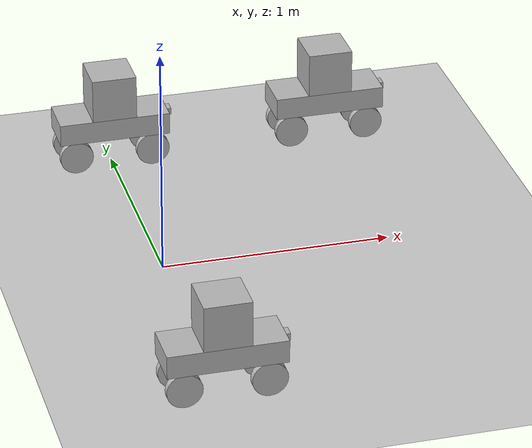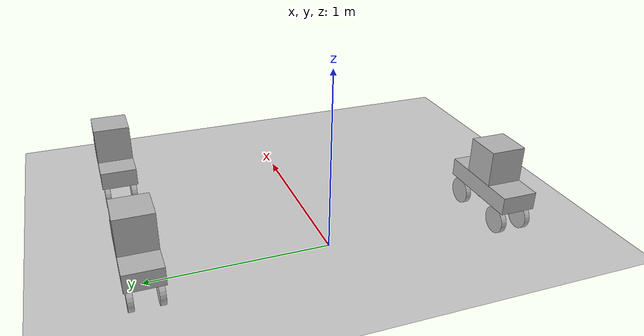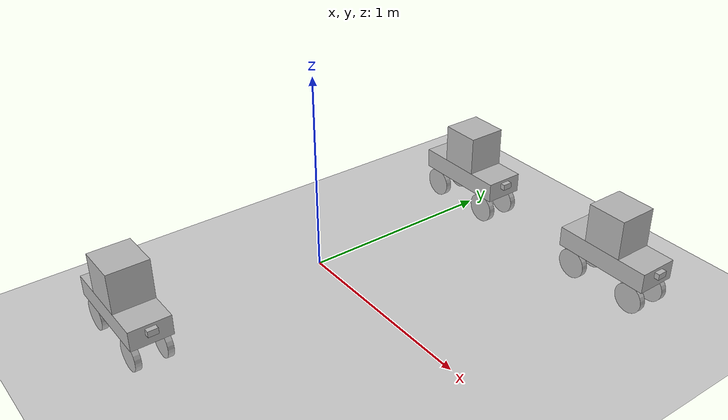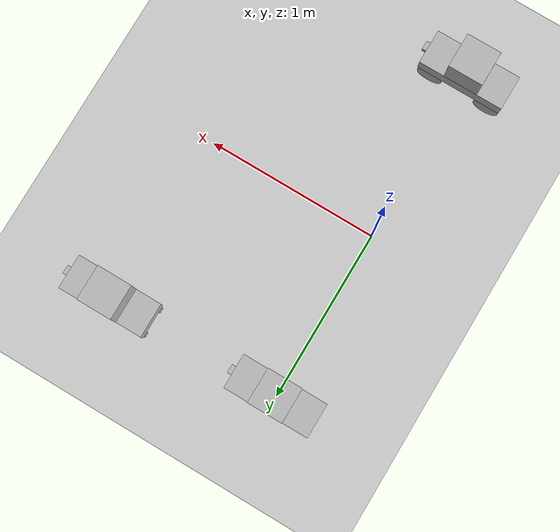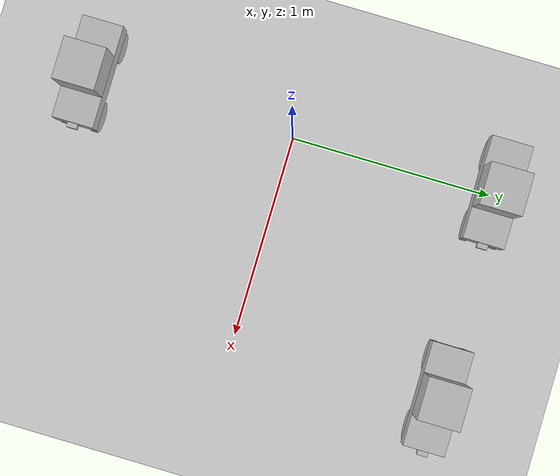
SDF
<sdf version="1.7">
 <world name="default">
  <light name="sun" type="directional">
   <pose>0 0 10 0 -0 0</pose>
   <diffuse>0.8 0.8 0.8 1</diffuse>
   <specular>0.2 0.2 0.2 1</specular>
   <attenuation>
    <range>1000</range>
    <constant>0.9</constant>
    <linear>0.01</linear>
    <quadratic>0.001</quadratic>
   </attenuation>
   <direction>-0.5 0.1 -0.9</direction>
   <spot><inner_angle>0</inner_angle><outer_angle>0</outer_angle><falloff>0</falloff></spot>
  </light>
  <model name="ground_plane">
   <static>1</static>
   <link name="link">
    <collision name="collision">
     <geometry><plane><normal>0 0 1</normal><size>100 100</size></plane></geometry>
     <surface><friction><ode><mu>100</mu><mu2>50</mu2></ode></friction></surface>
    </collision>
    <visual name="visual">
     <cast_shadows>0</cast_shadows>
     <geometry><plane><normal>0 0 1</normal><size>100 100</size></plane></geometry>
     <material>
      <script><uri>file://media/materials/scripts/gazebo.material</uri><name>Gazebo/Grey</name></script>
     </material>
    </visual>
   </link>
  </model>
  <gravity>0 0 -9.8</gravity>
  <magnetic_field>6e-06 2.3e-05 -4.2e-05</magnetic_field>
  <atmosphere type="adiabatic"/>
  <physics type="ode">
   <max_step_size>0.001</max_step_size>
   <real_time_factor>1</real_time_factor>
   <real_time_update_rate>1000</real_time_update_rate>
  </physics>
  <scene><ambient>0.4 0.4 0.4 1</ambient><background>0.7 0.7 0.7 1</background><shadows>1</shadows></scene>
  <spherical_coordinates>
   <surface_model>EARTH_WGS84</surface_model>
   <latitude_deg>0</latitude_deg>
   <longitude_deg>0</longitude_deg>
   <elevation>0</elevation>
   <heading_deg>0</heading_deg>
  </spherical_coordinates>
  <model name="robot2">
   <link name="robot2/base_link">
    <inertial>
     <pose>0.002063 0 0.025 0 -0 0</pose>
     <mass>6.06</mass>
     <inertia>
      <ixx>0.0462775</ixx>
      <ixy>0</ixy>
      <ixz>6.25e-05</ixz>
      <iyy>0.136877</iyy>
      <iyz>0</iyz>
      <izz>0.130619</izz>
     </inertia>
    </inertial>
    <collision name="robot2/base_link_collision">
     <geometry><box><size>0.5 0.2 0.1</size></box></geometry>
    </collision>
    <collision name="robot2/base_link_fixed_joint_lump__robot2/cube_link_collision_1">
     <pose>0 0 0.15 0 -0 0</pose>
     <geometry><box><size>0.2 0.2 0.2</size></box></geometry>
    </collision>
    <visual name="robot2/base_link_visual"><geometry><box><size>0.5 0.2 0.1</size></box></geometry></visual>
    <visual name="robot2/base_link_fixed_joint_lump__robot2/camera_link_visual_1">
     <pose>0.25 0 0.02 0 -0 0</pose>
     <geometry><box><size>0.05 0.05 0.03</size></box></geometry>
    </visual>
    <visual name="robot2/base_link_fixed_joint_lump__robot2/cube_link_visual_2">
     <pose>0 0 0.15 0 -0 0</pose>
     <geometry><box><size>0.2 0.2 0.2</size></box></geometry>
     <material>
      <script><name>Gazebo/ar</name><uri>file://media/materials/scripts/gazebo.material</uri></script>
     </material>
    </visual>
    <visual name="robot2/base_link_fixed_joint_lump__robot2/imu_link_visual_3">
     <pose>0 0 0.05 0 -0 0</pose>
     <geometry><box><size>0.03 0.03 0.01</size></box></geometry>
    </visual>
    <sensor name="camera" type="camera">
     <update_rate>50</update_rate>
     <camera name="head">
      <horizontal_fov>1.39626</horizontal_fov>
      <image><width>1920</width><height>1080</height><format>R8G8B8</format></image>
      <clip><near>0.02</near><far>300</far></clip>
      <noise><type>gaussian</type><mean>0</mean><stddev>0.007</stddev></noise>
     </camera>
     <plugin name="camera_controller" filename="libgazebo_ros_camera.so">
      <alwaysOn>1</alwaysOn>
      <updateRate>0.0</updateRate>
      <cameraName>camera</cameraName>
      <imageTopicName>image</imageTopicName>
      <cameraInfoTopicName>camera_info</cameraInfoTopicName>
      <frameName>robot2/camera_link</frameName>
      <hackBaseline>0.07</hackBaseline>
      <distortionK1>0.0</distortionK1>
      <distortionK2>0.0</distortionK2>
      <distortionK3>0.0</distortionK3>
      <distortionT1>0.0</distortionT1>
      <distortionT2>0.0</distortionT2>
      <robotNamespace>robot2</robotNamespace>
     </plugin>
     <pose>0.25 0 0.02 0 -0 0</pose>
    </sensor>
   </link>
   <joint name="robot2/left_front_wheel_joint" type="revolute">
    <pose relative_to="robot2/base_link">0.175 0.075 -0.125 0 -0 0</pose>
    <parent>robot2/base_link</parent>
    <child>robot2/left_front_wheel</child>
    <axis>
     <xyz>0 1 0</xyz>
     <limit><lower>-1e+16</lower><upper>1e+16</upper></limit>
     <dynamics><spring_reference>0</spring_reference><spring_stiffness>0</spring_stiffness></dynamics>
    </axis>
   </joint>
   <link name="robot2/left_front_wheel">
    <pose relative_to="robot2/left_front_wheel_joint">0 0 0 0 -0 0</pose>
    <inertial>
     <mass>0.5</mass>
     <inertia>
      <ixx>0.000370312</ixx>
      <ixy>0</ixy>
      <ixz>0</ixz>
      <iyy>0.000370312</iyy>
      <iyz>0</iyz>
      <izz>0.00140625</izz>
     </inertia>
    </inertial>
    <collision name="robot2/left_front_wheel_collision">
     <pose>0 0 0 1.5708 -0 0</pose>
     <geometry><cylinder><length>0.03</length><radius>0.075</radius></cylinder></geometry>
     <surface>
      <contact><ode><kp>1e+06</kp><kd>100</kd></ode></contact>
      <friction><ode><mu>1.5</mu><mu2>0.1</mu2><fdir1>1 0 0</fdir1></ode></friction>
     </surface>
    </collision>
    <visual name="robot2/left_front_wheel_visual">
     <pose>0 0 0 1.5708 -0 0</pose>
     <geometry><cylinder><length>0.03</length><radius>0.075</radius></cylinder></geometry>
    </visual>
    <slip1>0.1</slip1>
    <slip2>0.1</slip2>
   </link>
   <joint name="robot2/left_rear_wheel_joint" type="revolute">
    <pose relative_to="robot2/base_link">-0.175 0.075 -0.125 0 -0 0</pose>
    <parent>robot2/base_link</parent>
    <child>robot2/left_rear_wheel</child>
    <axis>
     <xyz>0 1 0</xyz>
     <limit><lower>-1e+16</lower><upper>1e+16</upper></limit>
     <dynamics><spring_reference>0</spring_reference><spring_stiffness>0</spring_stiffness></dynamics>
    </axis>
   </joint>
   <link name="robot2/left_rear_wheel">
    <pose relative_to="robot2/left_rear_wheel_joint">0 0 0 0 -0 0</pose>
    <inertial>
     <mass>0.5</mass>
     <inertia>
      <ixx>0.000370312</ixx>
      <ixy>0</ixy>
      <ixz>0</ixz>
      <iyy>0.000370312</iyy>
      <iyz>0</iyz>
      <izz>0.00140625</izz>
     </inertia>
    </inertial>
    <collision name="robot2/left_rear_wheel_collision">
     <pose>0 0 0 1.5708 -0 0</pose>
     <geometry><cylinder><length>0.03</length><radius>0.075</radius></cylinder></geometry>
     <surface>
      <contact><ode><kp>1e+06</kp><kd>100</kd></ode></contact>
      <friction><ode><mu>1.5</mu><mu2>0.1</mu2><fdir1>1 0 0</fdir1></ode></friction>
     </surface>
    </collision>
    <visual name="robot2/left_rear_wheel_visual">
     <pose>0 0 0 1.5708 -0 0</pose>
     <geometry><cylinder><length>0.03</length><radius>0.075</radius></cylinder></geometry>
    </visual>
    <slip1>0.1</slip1>
    <slip2>0.1</slip2>
   </link>
   <joint name="robot2/right_front_wheel_joint" type="revolute">
    <pose relative_to="robot2/base_link">0.175 -0.075 -0.125 0 -0 0</pose>
    <parent>robot2/base_link</parent>
    <child>robot2/right_front_wheel</child>
    <axis>
     <xyz>0 1 0</xyz>
     <limit><lower>-1e+16</lower><upper>1e+16</upper></limit>
     <dynamics><spring_reference>0</spring_reference><spring_stiffness>0</spring_stiffness></dynamics>
    </axis>
   </joint>
   <link name="robot2/right_front_wheel">
    <pose relative_to="robot2/right_front_wheel_joint">0 0 0 0 -0 0</pose>
    <inertial>
     <mass>0.5</mass>
     <inertia>
      <ixx>0.000370312</ixx>
      <ixy>0</ixy>
      <ixz>0</ixz>
      <iyy>0.000370312</iyy>
      <iyz>0</iyz>
      <izz>0.00140625</izz>
     </inertia>
    </inertial>
    <collision name="robot2/right_front_wheel_collision">
     <pose>0 0 0 1.5708 -0 0</pose>
     <geometry><cylinder><length>0.03</length><radius>0.075</radius></cylinder></geometry>
     <surface>
      <contact><ode><kp>1e+06</kp><kd>100</kd></ode></contact>
      <friction><ode><mu>1.5</mu><mu2>0.1</mu2><fdir1>1 0 0</fdir1></ode></friction>
     </surface>
    </collision>
    <visual name="robot2/right_front_wheel_visual">
     <pose>0 0 0 1.5708 -0 0</pose>
     <geometry><cylinder><length>0.03</length><radius>0.075</radius></cylinder></geometry>
    </visual>
    <slip1>0.1</slip1>
    <slip2>0.1</slip2>
   </link>
   <joint name="robot2/right_rear_wheel_joint" type="revolute">
    <pose relative_to="robot2/base_link">-0.175 -0.075 -0.125 0 -0 0</pose>
    <parent>robot2/base_link</parent>
    <child>robot2/right_rear_wheel</child>
    <axis>
     <xyz>0 1 0</xyz>
     <limit><lower>-1e+16</lower><upper>1e+16</upper></limit>
     <dynamics><spring_reference>0</spring_reference><spring_stiffness>0</spring_stiffness></dynamics>
    </axis>
   </joint>
   <link name="robot2/right_rear_wheel">
    <pose relative_to="robot2/right_rear_wheel_joint">0 0 0 0 -0 0</pose>
    <inertial>
     <mass>0.5</mass>
     <inertia>
      <ixx>0.000370312</ixx>
      <ixy>0</ixy>
      <ixz>0</ixz>
      <iyy>0.000370312</iyy>
      <iyz>0</iyz>
      <izz>0.00140625</izz>
     </inertia>
    </inertial>
    <collision name="robot2/right_rear_wheel_collision">
     <pose>0 0 0 1.5708 -0 0</pose>
     <geometry><cylinder><length>0.03</length><radius>0.075</radius></cylinder></geometry>
     <surface>
      <contact><ode><kp>1e+06</kp><kd>100</kd></ode></contact>
      <friction><ode><mu>1.5</mu><mu2>0.1</mu2><fdir1>1 0 0</fdir1></ode></friction>
     </surface>
    </collision>
    <visual name="robot2/right_rear_wheel_visual">
     <pose>0 0 0 1.5708 -0 0</pose>
     <geometry><cylinder><length>0.03</length><radius>0.075</radius></cylinder></geometry>
    </visual>
    <slip1>0.1</slip1>
    <slip2>0.1</slip2>
   </link>
   <plugin name="skid_steer_drive_controller" filename="libgazebo_ros_skid_steer_drive.so">
    <updateRate>100.0</updateRate>
    <robotNamespace>robot2</robotNamespace>
    <leftFrontJoint>robot2/left_front_wheel_joint</leftFrontJoint>
    <rightFrontJoint>robot2/right_front_wheel_joint</rightFrontJoint>
    <leftRearJoint>robot2/left_rear_wheel_joint</leftRearJoint>
    <rightRearJoint>robot2/right_rear_wheel_joint</rightRearJoint>
    <wheelSeparation>0.15</wheelSeparation>
    <wheelDiameter>0.15</wheelDiameter>
    <robotBaseFrame>robot2/base_link</robotBaseFrame>
    <torque>100</torque>
    <topicName>cmd_vel</topicName>
    <broadcastTF>1</broadcastTF>
    <odometryTopic>odom</odometryTopic>
    <odometryFrame>robot2/odom</odometryFrame>
    <publishWheelTF>0</publishWheelTF>
    <publishWheelJointState>1</publishWheelJointState>
   </plugin>
   <plugin name="imu_plugin" filename="libgazebo_ros_imu.so">
    <alwaysOn>1</alwaysOn>
    <bodyName>robot2/base_link</bodyName>
    <topicName>imu</topicName>
    <serviceName>imu_service</serviceName>
    <gaussianNoise>0.0</gaussianNoise>
    <updateRate>20.0</updateRate>
    <robotNamespace>robot2</robotNamespace>
   </plugin>
   <plugin name="ground_plane" filename="libgazebo_ros_planar_move.so">
    <robotNamespace>robot2</robotNamespace>
    <bodyName>robot2/base_link</bodyName>
    <pubTopic>ground_truth</pubTopic>
   </plugin>
   <frame name="robot2/camera_joint" attached_to="robot2/base_link"><pose>0.25 0 0.02 0 -0 0</pose></frame>
   <frame name="robot2/camera_link" attached_to="robot2/camera_joint"/>
   <frame name="robot2/cube_joint" attached_to="robot2/base_link"><pose>0 0 0.15 0 -0 0</pose></frame>
   <frame name="robot2/cube_link" attached_to="robot2/cube_joint"/>
   <frame name="robot2/imu_joint" attached_to="robot2/base_link"><pose>0 0 0.05 0 -0 0</pose></frame>
   <frame name="robot2/imu_link" attached_to="robot2/imu_joint"/>
   <pose>1.0012 1 0.199996 0 -0 0</pose>
  </model>
  <model name="robot1">
   <link name="robot1/base_link">
    <inertial>
     <pose>0.002063 0 0.025 0 -0 0</pose>
     <mass>6.06</mass>
     <inertia>
      <ixx>0.0462775</ixx>
      <ixy>0</ixy>
      <ixz>6.25e-05</ixz>
      <iyy>0.136877</iyy>
      <iyz>0</iyz>
      <izz>0.130619</izz>
     </inertia>
    </inertial>
    <collision name="robot1/base_link_collision">
     <geometry><box><size>0.5 0.2 0.1</size></box></geometry>
    </collision>
    <collision name="robot1/base_link_fixed_joint_lump__robot1/cube_link_collision_1">
     <pose>0 0 0.15 0 -0 0</pose>
     <geometry><box><size>0.2 0.2 0.2</size></box></geometry>
    </collision>
    <visual name="robot1/base_link_visual"><geometry><box><size>0.5 0.2 0.1</size></box></geometry></visual>
    <visual name="robot1/base_link_fixed_joint_lump__robot1/camera_link_visual_1">
     <pose>0.25 0 0.02 0 -0 0</pose>
     <geometry><box><size>0.05 0.05 0.03</size></box></geometry>
    </visual>
    <visual name="robot1/base_link_fixed_joint_lump__robot1/cube_link_visual_2">
     <pose>0 0 0.15 0 -0 0</pose>
     <geometry><box><size>0.2 0.2 0.2</size></box></geometry>
     <material>
      <script><name>Gazebo/ar</name><uri>file://media/materials/scripts/gazebo.material</uri></script>
     </material>
    </visual>
    <visual name="robot1/base_link_fixed_joint_lump__robot1/imu_link_visual_3">
     <pose>0 0 0.05 0 -0 0</pose>
     <geometry><box><size>0.03 0.03 0.01</size></box></geometry>
    </visual>
    <sensor name="camera" type="camera">
     <update_rate>50</update_rate>
     <camera name="head">
      <horizontal_fov>1.39626</horizontal_fov>
      <image><width>1920</width><height>1080</height><format>R8G8B8</format></image>
      <clip><near>0.02</near><far>300</far></clip>
      <noise><type>gaussian</type><mean>0</mean><stddev>0.007</stddev></noise>
     </camera>
     <plugin name="camera_controller" filename="libgazebo_ros_camera.so">
      <alwaysOn>1</alwaysOn>
      <updateRate>0.0</updateRate>
      <cameraName>camera</cameraName>
      <imageTopicName>image</imageTopicName>
      <cameraInfoTopicName>camera_info</cameraInfoTopicName>
      <frameName>robot1/camera_link</frameName>
      <hackBaseline>0.07</hackBaseline>
      <distortionK1>0.0</distortionK1>
      <distortionK2>0.0</distortionK2>
      <distortionK3>0.0</distortionK3>
      <distortionT1>0.0</distortionT1>
      <distortionT2>0.0</distortionT2>
      <robotNamespace>robot1</robotNamespace>
     </plugin>
     <pose>0.25 0 0.02 0 -0 0</pose>
    </sensor>
   </link>
   <joint name="robot1/left_front_wheel_joint" type="revolute">
    <pose relative_to="robot1/base_link">0.175 0.075 -0.125 0 -0 0</pose>
    <parent>robot1/base_link</parent>
    <child>robot1/left_front_wheel</child>
    <axis>
     <xyz>0 1 0</xyz>
     <limit><lower>-1e+16</lower><upper>1e+16</upper></limit>
     <dynamics><spring_reference>0</spring_reference><spring_stiffness>0</spring_stiffness></dynamics>
    </axis>
   </joint>
   <link name="robot1/left_front_wheel">
    <pose relative_to="robot1/left_front_wheel_joint">0 0 0 0 -0 0</pose>
    <inertial>
     <mass>0.5</mass>
     <inertia>
      <ixx>0.000370312</ixx>
      <ixy>0</ixy>
      <ixz>0</ixz>
      <iyy>0.000370312</iyy>
      <iyz>0</iyz>
      <izz>0.00140625</izz>
     </inertia>
    </inertial>
    <collision name="robot1/left_front_wheel_collision">
     <pose>0 0 0 1.5708 -0 0</pose>
     <geometry><cylinder><length>0.03</length><radius>0.075</radius></cylinder></geometry>
     <surface>
      <contact><ode><kp>1e+06</kp><kd>100</kd></ode></contact>
      <friction><ode><mu>1.5</mu><mu2>0.1</mu2><fdir1>1 0 0</fdir1></ode></friction>
     </surface>
    </collision>
    <visual name="robot1/left_front_wheel_visual">
     <pose>0 0 0 1.5708 -0 0</pose>
     <geometry><cylinder><length>0.03</length><radius>0.075</radius></cylinder></geometry>
    </visual>
    <slip1>0.1</slip1>
    <slip2>0.1</slip2>
   </link>
   <joint name="robot1/left_rear_wheel_joint" type="revolute">
    <pose relative_to="robot1/base_link">-0.175 0.075 -0.125 0 -0 0</pose>
    <parent>robot1/base_link</parent>
    <child>robot1/left_rear_wheel</child>
    <axis>
     <xyz>0 1 0</xyz>
     <limit><lower>-1e+16</lower><upper>1e+16</upper></limit>
     <dynamics><spring_reference>0</spring_reference><spring_stiffness>0</spring_stiffness></dynamics>
    </axis>
   </joint>
   <link name="robot1/left_rear_wheel">
    <pose relative_to="robot1/left_rear_wheel_joint">0 0 0 0 -0 0</pose>
    <inertial>
     <mass>0.5</mass>
     <inertia>
      <ixx>0.000370312</ixx>
      <ixy>0</ixy>
      <ixz>0</ixz>
      <iyy>0.000370312</iyy>
      <iyz>0</iyz>
      <izz>0.00140625</izz>
     </inertia>
    </inertial>
    <collision name="robot1/left_rear_wheel_collision">
     <pose>0 0 0 1.5708 -0 0</pose>
     <geometry><cylinder><length>0.03</length><radius>0.075</radius></cylinder></geometry>
     <surface>
      <contact><ode><kp>1e+06</kp><kd>100</kd></ode></contact>
      <friction><ode><mu>1.5</mu><mu2>0.1</mu2><fdir1>1 0 0</fdir1></ode></friction>
     </surface>
    </collision>
    <visual name="robot1/left_rear_wheel_visual">
     <pose>0 0 0 1.5708 -0 0</pose>
     <geometry><cylinder><length>0.03</length><radius>0.075</radius></cylinder></geometry>
    </visual>
    <slip1>0.1</slip1>
    <slip2>0.1</slip2>
   </link>
   <joint name="robot1/right_front_wheel_joint" type="revolute">
    <pose relative_to="robot1/base_link">0.175 -0.075 -0.125 0 -0 0</pose>
    <parent>robot1/base_link</parent>
    <child>robot1/right_front_wheel</child>
    <axis>
     <xyz>0 1 0</xyz>
     <limit><lower>-1e+16</lower><upper>1e+16</upper></limit>
     <dynamics><spring_reference>0</spring_reference><spring_stiffness>0</spring_stiffness></dynamics>
    </axis>
   </joint>
   <link name="robot1/right_front_wheel">
    <pose relative_to="robot1/right_front_wheel_joint">0 0 0 0 -0 0</pose>
    <inertial>
     <mass>0.5</mass>
     <inertia>
      <ixx>0.000370312</ixx>
      <ixy>0</ixy>
      <ixz>0</ixz>
      <iyy>0.000370312</iyy>
      <iyz>0</iyz>
      <izz>0.00140625</izz>
     </inertia>
    </inertial>
    <collision name="robot1/right_front_wheel_collision">
     <pose>0 0 0 1.5708 -0 0</pose>
     <geometry><cylinder><length>0.03</length><radius>0.075</radius></cylinder></geometry>
     <surface>
      <contact><ode><kp>1e+06</kp><kd>100</kd></ode></contact>
      <friction><ode><mu>1.5</mu><mu2>0.1</mu2><fdir1>1 0 0</fdir1></ode></friction>
     </surface>
    </collision>
    <visual name="robot1/right_front_wheel_visual">
     <pose>0 0 0 1.5708 -0 0</pose>
     <geometry><cylinder><length>0.03</length><radius>0.075</radius></cylinder></geometry>
    </visual>
    <slip1>0.1</slip1>
    <slip2>0.1</slip2>
   </link>
   <joint name="robot1/right_rear_wheel_joint" type="revolute">
    <pose relative_to="robot1/base_link">-0.175 -0.075 -0.125 0 -0 0</pose>
    <parent>robot1/base_link</parent>
    <child>robot1/right_rear_wheel</child>
    <axis>
     <xyz>0 1 0</xyz>
     <limit><lower>-1e+16</lower><upper>1e+16</upper></limit>
     <dynamics><spring_reference>0</spring_reference><spring_stiffness>0</spring_stiffness></dynamics>
    </axis>
   </joint>
   <link name="robot1/right_rear_wheel">
    <pose relative_to="robot1/right_rear_wheel_joint">0 0 0 0 -0 0</pose>
    <inertial>
     <mass>0.5</mass>
     <inertia>
      <ixx>0.000370312</ixx>
      <ixy>0</ixy>
      <ixz>0</ixz>
      <iyy>0.000370312</iyy>
      <iyz>0</iyz>
      <izz>0.00140625</izz>
     </inertia>
    </inertial>
    <collision name="robot1/right_rear_wheel_collision">
     <pose>0 0 0 1.5708 -0 0</pose>
     <geometry><cylinder><length>0.03</length><radius>0.075</radius></cylinder></geometry>
     <surface>
      <contact><ode><kp>1e+06</kp><kd>100</kd></ode></contact>
      <friction><ode><mu>1.5</mu><mu2>0.1</mu2><fdir1>1 0 0</fdir1></ode></friction>
     </surface>
    </collision>
    <visual name="robot1/right_rear_wheel_visual">
     <pose>0 0 0 1.5708 -0 0</pose>
     <geometry><cylinder><length>0.03</length><radius>0.075</radius></cylinder></geometry>
    </visual>
    <slip1>0.1</slip1>
    <slip2>0.1</slip2>
   </link>
   <plugin name="skid_steer_drive_controller" filename="libgazebo_ros_skid_steer_drive.so">
    <updateRate>100.0</updateRate>
    <robotNamespace>robot1</robotNamespace>
    <leftFrontJoint>robot1/left_front_wheel_joint</leftFrontJoint>
    <rightFrontJoint>robot1/right_front_wheel_joint</rightFrontJoint>
    <leftRearJoint>robot1/left_rear_wheel_joint</leftRearJoint>
    <rightRearJoint>robot1/right_rear_wheel_joint</rightRearJoint>
    <wheelSeparation>0.15</wheelSeparation>
    <wheelDiameter>0.15</wheelDiameter>
    <robotBaseFrame>robot1/base_link</robotBaseFrame>
    <torque>100</torque>
    <topicName>cmd_vel</topicName>
    <broadcastTF>1</broadcastTF>
    <odometryTopic>odom</odometryTopic>
    <odometryFrame>robot1/odom</odometryFrame>
    <publishWheelTF>0</publishWheelTF>
    <publishWheelJointState>1</publishWheelJointState>
   </plugin>
   <plugin name="imu_plugin" filename="libgazebo_ros_imu.so">
    <alwaysOn>1</alwaysOn>
    <bodyName>robot1/base_link</bodyName>
    <topicName>imu</topicName>
    <serviceName>imu_service</serviceName>
    <gaussianNoise>0.0</gaussianNoise>
    <updateRate>20.0</updateRate>
    <robotNamespace>robot1</robotNamespace>
   </plugin>
   <plugin name="ground_plane" filename="libgazebo_ros_planar_move.so">
    <robotNamespace>robot1</robotNamespace>
    <bodyName>robot1/base_link</bodyName>
    <pubTopic>ground_truth</pubTopic>
   </plugin>
   <frame name="robot1/camera_joint" attached_to="robot1/base_link"><pose>0.25 0 0.02 0 -0 0</pose></frame>
   <frame name="robot1/camera_link" attached_to="robot1/camera_joint"/>
   <frame name="robot1/cube_joint" attached_to="robot1/base_link"><pose>0 0 0.15 0 -0 0</pose></frame>
   <frame name="robot1/cube_link" attached_to="robot1/cube_joint"/>
   <frame name="robot1/imu_joint" attached_to="robot1/base_link"><pose>0 0 0.05 0 -0 0</pose></frame>
   <frame name="robot1/imu_link" attached_to="robot1/imu_joint"/>
   <pose>0.001174 -1 0.199996 0 -0 0</pose>
  </model>
  <model name="robot3">
   <link name="robot3/base_link">
    <inertial>
     <pose>0.002063 0 0.025 0 -0 0</pose>
     <mass>6.06</mass>
     <inertia>
      <ixx>0.0462775</ixx>
      <ixy>0</ixy>
      <ixz>6.25e-05</ixz>
      <iyy>0.136877</iyy>
      <iyz>0</iyz>
      <izz>0.130619</izz>
     </inertia>
    </inertial>
    <collision name="robot3/base_link_collision">
     <geometry><box><size>0.5 0.2 0.1</size></box></geometry>
    </collision>
    <collision name="robot3/base_link_fixed_joint_lump__robot3/cube_link_collision_1">
     <pose>0 0 0.15 0 -0 0</pose>
     <geometry><box><size>0.2 0.2 0.2</size></box></geometry>
    </collision>
    <visual name="robot3/base_link_visual"><geometry><box><size>0.5 0.2 0.1</size></box></geometry></visual>
    <visual name="robot3/base_link_fixed_joint_lump__robot3/camera_link_visual_1">
     <pose>0.25 0 0.02 0 -0 0</pose>
     <geometry><box><size>0.05 0.05 0.03</size></box></geometry>
    </visual>
    <visual name="robot3/base_link_fixed_joint_lump__robot3/cube_link_visual_2">
     <pose>0 0 0.15 0 -0 0</pose>
     <geometry><box><size>0.2 0.2 0.2</size></box></geometry>
     <material>
      <script><name>Gazebo/ar</name><uri>file://media/materials/scripts/gazebo.material</uri></script>
     </material>
    </visual>
    <visual name="robot3/base_link_fixed_joint_lump__robot3/imu_link_visual_3">
     <pose>0 0 0.05 0 -0 0</pose>
     <geometry><box><size>0.03 0.03 0.01</size></box></geometry>
    </visual>
    <sensor name="camera" type="camera">
     <update_rate>50</update_rate>
     <camera name="head">
      <horizontal_fov>1.39626</horizontal_fov>
      <image><width>1920</width><height>1080</height><format>R8G8B8</format></image>
      <clip><near>0.02</near><far>300</far></clip>
      <noise><type>gaussian</type><mean>0</mean><stddev>0.007</stddev></noise>
     </camera>
     <plugin name="camera_controller" filename="libgazebo_ros_camera.so">
      <alwaysOn>1</alwaysOn>
      <updateRate>0.0</updateRate>
      <cameraName>camera</cameraName>
      <imageTopicName>image</imageTopicName>
      <cameraInfoTopicName>camera_info</cameraInfoTopicName>
      <frameName>robot3/camera_link</frameName>
      <hackBaseline>0.07</hackBaseline>
      <distortionK1>0.0</distortionK1>
      <distortionK2>0.0</distortionK2>
      <distortionK3>0.0</distortionK3>
      <distortionT1>0.0</distortionT1>
      <distortionT2>0.0</distortionT2>
      <robotNamespace>robot3</robotNamespace>
     </plugin>
     <pose>0.25 0 0.02 0 -0 0</pose>
    </sensor>
   </link>
   <joint name="robot3/left_front_wheel_joint" type="revolute">
    <pose relative_to="robot3/base_link">0.175 0.075 -0.125 0 -0 0</pose>
    <parent>robot3/base_link</parent>
    <child>robot3/left_front_wheel</child>
    <axis>
     <xyz>0 1 0</xyz>
     <limit><lower>-1e+16</lower><upper>1e+16</upper></limit>
     <dynamics><spring_reference>0</spring_reference><spring_stiffness>0</spring_stiffness></dynamics>
    </axis>
   </joint>
   <link name="robot3/left_front_wheel">
    <pose relative_to="robot3/left_front_wheel_joint">0 0 0 0 -0 0</pose>
    <inertial>
     <mass>0.5</mass>
     <inertia>
      <ixx>0.000370312</ixx>
      <ixy>0</ixy>
      <ixz>0</ixz>
      <iyy>0.000370312</iyy>
      <iyz>0</iyz>
      <izz>0.00140625</izz>
     </inertia>
    </inertial>
    <collision name="robot3/left_front_wheel_collision">
     <pose>0 0 0 1.5708 -0 0</pose>
     <geometry><cylinder><length>0.03</length><radius>0.075</radius></cylinder></geometry>
     <surface>
      <contact><ode><kp>1e+06</kp><kd>100</kd></ode></contact>
      <friction><ode><mu>1.5</mu><mu2>0.1</mu2><fdir1>1 0 0</fdir1></ode></friction>
     </surface>
    </collision>
    <visual name="robot3/left_front_wheel_visual">
     <pose>0 0 0 1.5708 -0 0</pose>
     <geometry><cylinder><length>0.03</length><radius>0.075</radius></cylinder></geometry>
    </visual>
    <slip1>0.1</slip1>
    <slip2>0.1</slip2>
   </link>
   <joint name="robot3/left_rear_wheel_joint" type="revolute">
    <pose relative_to="robot3/base_link">-0.175 0.075 -0.125 0 -0 0</pose>
    <parent>robot3/base_link</parent>
    <child>robot3/left_rear_wheel</child>
    <axis>
     <xyz>0 1 0</xyz>
     <limit><lower>-1e+16</lower><upper>1e+16</upper></limit>
     <dynamics><spring_reference>0</spring_reference><spring_stiffness>0</spring_stiffness></dynamics>
    </axis>
   </joint>
   <link name="robot3/left_rear_wheel">
    <pose relative_to="robot3/left_rear_wheel_joint">0 0 0 0 -0 0</pose>
    <inertial>
     <mass>0.5</mass>
     <inertia>
      <ixx>0.000370312</ixx>
      <ixy>0</ixy>
      <ixz>0</ixz>
      <iyy>0.000370312</iyy>
      <iyz>0</iyz>
      <izz>0.00140625</izz>
     </inertia>
    </inertial>
    <collision name="robot3/left_rear_wheel_collision">
     <pose>0 0 0 1.5708 -0 0</pose>
     <geometry><cylinder><length>0.03</length><radius>0.075</radius></cylinder></geometry>
     <surface>
      <contact><ode><kp>1e+06</kp><kd>100</kd></ode></contact>
      <friction><ode><mu>1.5</mu><mu2>0.1</mu2><fdir1>1 0 0</fdir1></ode></friction>
     </surface>
    </collision>
    <visual name="robot3/left_rear_wheel_visual">
     <pose>0 0 0 1.5708 -0 0</pose>
     <geometry><cylinder><length>0.03</length><radius>0.075</radius></cylinder></geometry>
    </visual>
    <slip1>0.1</slip1>
    <slip2>0.1</slip2>
   </link>
   <joint name="robot3/right_front_wheel_joint" type="revolute">
    <pose relative_to="robot3/base_link">0.175 -0.075 -0.125 0 -0 0</pose>
    <parent>robot3/base_link</parent>
    <child>robot3/right_front_wheel</child>
    <axis>
     <xyz>0 1 0</xyz>
     <limit><lower>-1e+16</lower><upper>1e+16</upper></limit>
     <dynamics><spring_reference>0</spring_reference><spring_stiffness>0</spring_stiffness></dynamics>
    </axis>
   </joint>
   <link name="robot3/right_front_wheel">
    <pose relative_to="robot3/right_front_wheel_joint">0 0 0 0 -0 0</pose>
    <inertial>
     <mass>0.5</mass>
     <inertia>
      <ixx>0.000370312</ixx>
      <ixy>0</ixy>
      <ixz>0</ixz>
      <iyy>0.000370312</iyy>
      <iyz>0</iyz>
      <izz>0.00140625</izz>
     </inertia>
    </inertial>
    <collision name="robot3/right_front_wheel_collision">
     <pose>0 0 0 1.5708 -0 0</pose>
     <geometry><cylinder><length>0.03</length><radius>0.075</radius></cylinder></geometry>
     <surface>
      <contact><ode><kp>1e+06</kp><kd>100</kd></ode></contact>
      <friction><ode><mu>1.5</mu><mu2>0.1</mu2><fdir1>1 0 0</fdir1></ode></friction>
     </surface>
    </collision>
    <visual name="robot3/right_front_wheel_visual">
     <pose>0 0 0 1.5708 -0 0</pose>
     <geometry><cylinder><length>0.03</length><radius>0.075</radius></cylinder></geometry>
    </visual>
    <slip1>0.1</slip1>
    <slip2>0.1</slip2>
   </link>
   <joint name="robot3/right_rear_wheel_joint" type="revolute">
    <pose relative_to="robot3/base_link">-0.175 -0.075 -0.125 0 -0 0</pose>
    <parent>robot3/base_link</parent>
    <child>robot3/right_rear_wheel</child>
    <axis>
     <xyz>0 1 0</xyz>
     <limit><lower>-1e+16</lower><upper>1e+16</upper></limit>
     <dynamics><spring_reference>0</spring_reference><spring_stiffness>0</spring_stiffness></dynamics>
    </axis>
   </joint>
   <link name="robot3/right_rear_wheel">
    <pose relative_to="robot3/right_rear_wheel_joint">0 0 0 0 -0 0</pose>
    <inertial>
     <mass>0.5</mass>
     <inertia>
      <ixx>0.000370312</ixx>
      <ixy>0</ixy>
      <ixz>0</ixz>
      <iyy>0.000370312</iyy>
      <iyz>0</iyz>
      <izz>0.00140625</izz>
     </inertia>
    </inertial>
    <collision name="robot3/right_rear_wheel_collision">
     <pose>0 0 0 1.5708 -0 0</pose>
     <geometry><cylinder><length>0.03</length><radius>0.075</radius></cylinder></geometry>
     <surface>
      <contact><ode><kp>1e+06</kp><kd>100</kd></ode></contact>
      <friction><ode><mu>1.5</mu><mu2>0.1</mu2><fdir1>1 0 0</fdir1></ode></friction>
     </surface>
    </collision>
    <visual name="robot3/right_rear_wheel_visual">
     <pose>0 0 0 1.5708 -0 0</pose>
     <geometry><cylinder><length>0.03</length><radius>0.075</radius></cylinder></geometry>
    </visual>
    <slip1>0.1</slip1>
    <slip2>0.1</slip2>
   </link>
   <plugin name="skid_steer_drive_controller" filename="libgazebo_ros_skid_steer_drive.so">
    <updateRate>100.0</updateRate>
    <robotNamespace>robot3</robotNamespace>
    <leftFrontJoint>robot3/left_front_wheel_joint</leftFrontJoint>
    <rightFrontJoint>robot3/right_front_wheel_joint</rightFrontJoint>
    <leftRearJoint>robot3/left_rear_wheel_joint</leftRearJoint>
    <rightRearJoint>robot3/right_rear_wheel_joint</rightRearJoint>
    <wheelSeparation>0.15</wheelSeparation>
    <wheelDiameter>0.15</wheelDiameter>
    <robotBaseFrame>robot3/base_link</robotBaseFrame>
    <torque>100</torque>
    <topicName>cmd_vel</topicName>
    <broadcastTF>1</broadcastTF>
    <odometryTopic>odom</odometryTopic>
    <odometryFrame>robot3/odom</odometryFrame>
    <publishWheelTF>0</publishWheelTF>
    <publishWheelJointState>1</publishWheelJointState>
   </plugin>
   <plugin name="imu_plugin" filename="libgazebo_ros_imu.so">
    <alwaysOn>1</alwaysOn>
    <bodyName>robot3/base_link</bodyName>
    <topicName>imu</topicName>
    <serviceName>imu_service</serviceName>
    <gaussianNoise>0.0</gaussianNoise>
    <updateRate>20.0</updateRate>
    <robotNamespace>robot3</robotNamespace>
   </plugin>
   <plugin name="ground_plane" filename="libgazebo_ros_planar_move.so">
    <robotNamespace>robot3</robotNamespace>
    <bodyName>robot3/base_link</bodyName>
    <pubTopic>ground_truth</pubTopic>
   </plugin>
   <frame name="robot3/camera_joint" attached_to="robot3/base_link"><pose>0.25 0 0.02 0 -0 0</pose></frame>
   <frame name="robot3/camera_link" attached_to="robot3/camera_joint"/>
   <frame name="robot3/cube_joint" attached_to="robot3/base_link"><pose>0 0 0.15 0 -0 0</pose></frame>
   <frame name="robot3/cube_link" attached_to="robot3/cube_joint"/>
   <frame name="robot3/imu_joint" attached_to="robot3/base_link"><pose>0 0 0.05 0 -0 0</pose></frame>
   <frame name="robot3/imu_link" attached_to="robot3/imu_joint"/>
   <pose>0.001195 1 0.199996 0 -0 0</pose>
  </model>
 </world>
</sdf>
